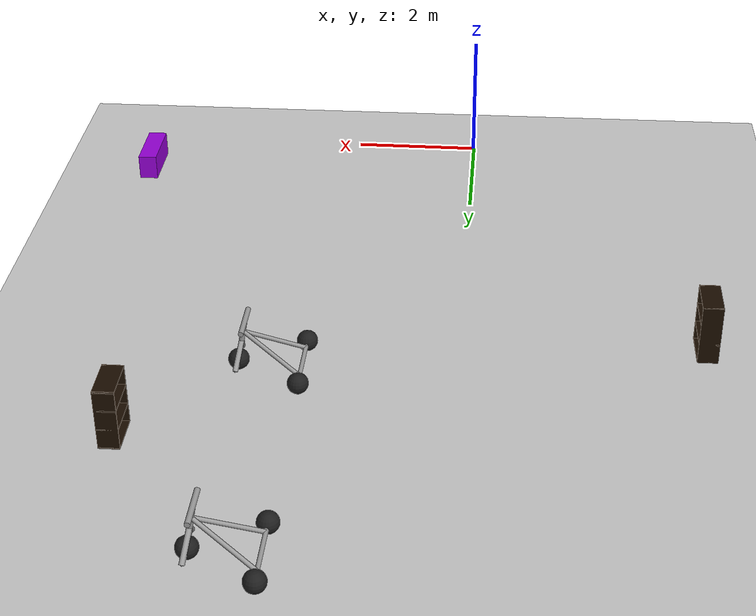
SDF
<sdf version="1.6">
 <world name="default">
  <model name="ground_plane">
   <static>1</static>
   <link name="link">
    <collision name="collision">
     <geometry><plane><normal>0 0 1</normal><size>100 100</size></plane></geometry>
     <surface><friction><ode><mu>100</mu><mu2>50</mu2></ode></friction></surface>
    </collision>
    <visual name="visual">
     <cast_shadows>0</cast_shadows>
     <geometry><plane><normal>0 0 1</normal><size>100 100</size></plane></geometry>
     <material>
      <script><uri>file://media/materials/scripts/gazebo.material</uri><name>Gazebo/Grey</name></script>
     </material>
    </visual>
   </link>
  </model>
  <model name="trisphere_cycle">
   <link name="frame">
    <pose>-0.408559 0 0.385023 0 -0.522021 0</pose>
    <inertial>
     <mass>10</mass>
     <inertia><ixx>0.228</ixx><iyy>0.743521</iyy><izz>0.965521</izz><ixy>0</ixy><ixz>0</ixz><iyz>0</iyz></inertia>
    </inertial>
    <collision name="axle_collision">
     <pose>-0.471335 0 0 1.5708 -0 0</pose>
     <geometry><cylinder><length>1.03923</length><radius>0.03</radius></cylinder></geometry>
    </collision>
    <visual name="axle_visual">
     <pose>-0.471335 0 0 1.5708 -0 0</pose>
     <geometry><cylinder><length>1.03923</length><radius>0.03</radius></cylinder></geometry>
     <material>
      <script><uri>file://media/materials/scripts/gazebo.material</uri><name>Gazebo/Grey</name></script>
     </material>
    </visual>
    <collision name="frame_left_collision">
     <pose>0 0.171552 0 -2.79253 1.57079 3.14159</pose>
     <geometry><cylinder><length>1.00317</length><radius>0.03</radius></cylinder></geometry>
    </collision>
    <visual name="frame_left_visual">
     <pose>0 0.171552 0 -2.79253 1.57079 3.14159</pose>
     <geometry><cylinder><length>1.00317</length><radius>0.03</radius></cylinder></geometry>
     <material>
      <script><uri>file://media/materials/scripts/gazebo.material</uri><name>Gazebo/Grey</name></script>
     </material>
    </visual>
    <collision name="frame_right_collision">
     <pose>0 -0.171552 0 2.79253 1.57079 -3.14159</pose>
     <geometry><cylinder><length>1.00317</length><radius>0.03</radius></cylinder></geometry>
    </collision>
    <visual name="frame_right_visual">
     <pose>0 -0.171552 0 2.79253 1.57079 -3.14159</pose>
     <geometry><cylinder><length>1.00317</length><radius>0.03</radius></cylinder></geometry>
     <material>
      <script><uri>file://media/materials/scripts/gazebo.material</uri><name>Gazebo/Grey</name></script>
     </material>
    </visual>
   </link>
   <link name="fork">
    <pose>0.041441 0 0.385023 0 -0.174533 0</pose>
    <inertial>
     <mass>3</mass>
     <inertia>
      <ixx>0.158203</ixx>
      <iyy>0.0583594</iyy>
      <izz>0.102656</izz>
      <ixy>0</ixy>
      <ixz>0</ixz>
      <iyz>0</iyz>
     </inertia>
    </inertial>
    <collision name="handlebars_collision">
     <pose>0 0 0.397748 1.5708 -0 0</pose>
     <geometry><cylinder><length>0.636396</length><radius>0.0375</radius></cylinder></geometry>
    </collision>
    <visual name="handlebars_visual">
     <pose>0 0 0.397748 1.5708 -0 0</pose>
     <geometry><cylinder><length>0.636396</length><radius>0.0375</radius></cylinder></geometry>
     <material>
      <script><uri>file://media/materials/scripts/gazebo.material</uri><name>Gazebo/Grey</name></script>
     </material>
    </visual>
    <collision name="headtube_collision">
     <pose>0 0 0.238649 0 -0 0</pose>
     <geometry><cylinder><length>0.318198</length><radius>0.0375</radius></cylinder></geometry>
    </collision>
    <visual name="headtube_visual">
     <pose>0 0 0.238649 0 -0 0</pose>
     <geometry><cylinder><length>0.318198</length><radius>0.0375</radius></cylinder></geometry>
     <material>
      <script><uri>file://media/materials/scripts/gazebo.material</uri><name>Gazebo/Grey</name></script>
     </material>
    </visual>
    <collision name="spindle_collision">
     <pose>0 0 -0.238649 1.5708 -0 0</pose>
     <geometry><cylinder><length>0.636396</length><radius>0.015</radius></cylinder></geometry>
    </collision>
    <visual name="spindle_visual">
     <pose>0 0 -0.238649 1.5708 -0 0</pose>
     <geometry><cylinder><length>0.636396</length><radius>0.015</radius></cylinder></geometry>
     <material>
      <script><uri>file://media/materials/scripts/gazebo.material</uri><name>Gazebo/Grey</name></script>
     </material>
    </visual>
    <collision name="fork_left_collision">
     <pose>0 0.159099 -0.07955 0.785398 -0 0</pose>
     <geometry><cylinder><length>0.45</length><radius>0.0375</radius></cylinder></geometry>
    </collision>
    <visual name="fork_left_visual">
     <pose>0 0.159099 -0.07955 0.785398 -0 0</pose>
     <geometry><cylinder><length>0.45</length><radius>0.0375</radius></cylinder></geometry>
     <material>
      <script><uri>file://media/materials/scripts/gazebo.material</uri><name>Gazebo/Grey</name></script>
     </material>
    </visual>
    <collision name="fork_right_collision">
     <pose>0 -0.159099 -0.07955 -0.785398 0 0</pose>
     <geometry><cylinder><length>0.45</length><radius>0.0375</radius></cylinder></geometry>
    </collision>
    <visual name="fork_right_visual">
     <pose>0 -0.159099 -0.07955 -0.785398 0 0</pose>
     <geometry><cylinder><length>0.45</length><radius>0.0375</radius></cylinder></geometry>
     <material>
      <script><uri>file://media/materials/scripts/gazebo.material</uri><name>Gazebo/Grey</name></script>
     </material>
    </visual>
   </link>
   <link name="wheel_front">
    <pose>0.082882 0 0.15 0 -0 0</pose>
    <inertial>
     <mass>0.5</mass>
     <inertia><ixx>0.0045</ixx><iyy>0.0045</iyy><izz>0.0045</izz><ixy>0</ixy><ixz>0</ixz><iyz>0</iyz></inertia>
    </inertial>
    <collision name="collision">
     <geometry><sphere><radius>0.15</radius></sphere></geometry>
     <surface><contact><ode><kp>1e+08</kp><kd>1</kd><min_depth>0.0005</min_depth></ode></contact></surface>
    </collision>
    <visual name="visual">
     <geometry><sphere><radius>0.15</radius></sphere></geometry>
     <material>
      <script><uri>file://media/materials/scripts/gazebo.material</uri><name>Gazebo/Black</name></script>
     </material>
    </visual>
   </link>
   <joint name="wheel_front_steer" type="revolute">
    <parent>frame</parent>
    <child>fork</child>
    <axis>
     <xyz>0 0 1</xyz>
     <limit><lower>-0.959931</lower><upper>0.959931</upper></limit>
     <use_parent_model_frame>0</use_parent_model_frame>
     <dynamics><spring_reference>0</spring_reference><spring_stiffness>0</spring_stiffness></dynamics>
    </axis>
   </joint>
   <joint name="wheel_front_spin" type="revolute">
    <parent>fork</parent>
    <child>wheel_front</child>
    <axis>
     <xyz>0 1 0</xyz>
     <use_parent_model_frame>0</use_parent_model_frame>
     <limit><lower>-1e+16</lower><upper>1e+16</upper></limit>
     <dynamics><spring_reference>0</spring_reference><spring_stiffness>0</spring_stiffness></dynamics>
    </axis>
   </joint>
   <link name="wheel_rear_left">
    <pose>-0.817118 0.519615 0.15 0 -0 0</pose>
    <inertial>
     <mass>0.5</mass>
     <inertia><ixx>0.0045</ixx><iyy>0.0045</iyy><izz>0.0045</izz><ixy>0</ixy><ixz>0</ixz><iyz>0</iyz></inertia>
    </inertial>
    <collision name="collision">
     <geometry><sphere><radius>0.15</radius></sphere></geometry>
     <surface><contact><ode><kp>1e+08</kp><kd>1</kd><min_depth>0.0005</min_depth></ode></contact></surface>
    </collision>
    <visual name="visual">
     <geometry><sphere><radius>0.15</radius></sphere></geometry>
     <material>
      <script><uri>file://media/materials/scripts/gazebo.material</uri><name>Gazebo/Black</name></script>
     </material>
    </visual>
   </link>
   <joint name="wheel_rear_left_spin" type="revolute">
    <parent>frame</parent>
    <child>wheel_rear_left</child>
    <axis>
     <xyz>0 1 0</xyz>
     <use_parent_model_frame>0</use_parent_model_frame>
     <limit><lower>-1e+16</lower><upper>1e+16</upper></limit>
     <dynamics><spring_reference>0</spring_reference><spring_stiffness>0</spring_stiffness></dynamics>
    </axis>
   </joint>
   <link name="wheel_rear_right">
    <pose>-0.817118 -0.519615 0.15 0 -0 0</pose>
    <inertial>
     <mass>0.5</mass>
     <inertia><ixx>0.0045</ixx><iyy>0.0045</iyy><izz>0.0045</izz><ixy>0</ixy><ixz>0</ixz><iyz>0</iyz></inertia>
    </inertial>
    <collision name="collision">
     <geometry><sphere><radius>0.15</radius></sphere></geometry>
     <surface><contact><ode><kp>1e+08</kp><kd>1</kd><min_depth>0.0005</min_depth></ode></contact></surface>
    </collision>
    <visual name="visual">
     <geometry><sphere><radius>0.15</radius></sphere></geometry>
     <material>
      <script><uri>file://media/materials/scripts/gazebo.material</uri><name>Gazebo/Black</name></script>
     </material>
    </visual>
   </link>
   <joint name="wheel_rear_right_spin" type="revolute">
    <parent>frame</parent>
    <child>wheel_rear_right</child>
    <axis>
     <xyz>0 1 0</xyz>
     <use_parent_model_frame>0</use_parent_model_frame>
     <limit><lower>-1e+16</lower><upper>1e+16</upper></limit>
     <dynamics><spring_reference>0</spring_reference><spring_stiffness>0</spring_stiffness></dynamics>
    </axis>
   </joint>
   <pose>3.00851 10.7727 -0.000501 0 1e-06 -0.007453</pose>
  </model>
  <model name="trisphere_cycle_0">
   <link name="frame">
    <pose>-0.408559 0 0.385023 0 -0.522021 0</pose>
    <inertial>
     <mass>10</mass>
     <inertia><ixx>0.228</ixx><iyy>0.743521</iyy><izz>0.965521</izz><ixy>0</ixy><ixz>0</ixz><iyz>0</iyz></inertia>
    </inertial>
    <collision name="axle_collision">
     <pose>-0.471335 0 0 1.5708 -0 0</pose>
     <geometry><cylinder><length>1.03923</length><radius>0.03</radius></cylinder></geometry>
    </collision>
    <visual name="axle_visual">
     <pose>-0.471335 0 0 1.5708 -0 0</pose>
     <geometry><cylinder><length>1.03923</length><radius>0.03</radius></cylinder></geometry>
     <material>
      <script><uri>file://media/materials/scripts/gazebo.material</uri><name>Gazebo/Grey</name></script>
     </material>
    </visual>
    <collision name="frame_left_collision">
     <pose>0 0.171552 0 -2.79253 1.57079 3.14159</pose>
     <geometry><cylinder><length>1.00317</length><radius>0.03</radius></cylinder></geometry>
    </collision>
    <visual name="frame_left_visual">
     <pose>0 0.171552 0 -2.79253 1.57079 3.14159</pose>
     <geometry><cylinder><length>1.00317</length><radius>0.03</radius></cylinder></geometry>
     <material>
      <script><uri>file://media/materials/scripts/gazebo.material</uri><name>Gazebo/Grey</name></script>
     </material>
    </visual>
    <collision name="frame_right_collision">
     <pose>0 -0.171552 0 2.79253 1.57079 -3.14159</pose>
     <geometry><cylinder><length>1.00317</length><radius>0.03</radius></cylinder></geometry>
    </collision>
    <visual name="frame_right_visual">
     <pose>0 -0.171552 0 2.79253 1.57079 -3.14159</pose>
     <geometry><cylinder><length>1.00317</length><radius>0.03</radius></cylinder></geometry>
     <material>
      <script><uri>file://media/materials/scripts/gazebo.material</uri><name>Gazebo/Grey</name></script>
     </material>
    </visual>
   </link>
   <link name="fork">
    <pose>0.041441 0 0.385023 0 -0.174533 0</pose>
    <inertial>
     <mass>3</mass>
     <inertia>
      <ixx>0.158203</ixx>
      <iyy>0.0583594</iyy>
      <izz>0.102656</izz>
      <ixy>0</ixy>
      <ixz>0</ixz>
      <iyz>0</iyz>
     </inertia>
    </inertial>
    <collision name="handlebars_collision">
     <pose>0 0 0.397748 1.5708 -0 0</pose>
     <geometry><cylinder><length>0.636396</length><radius>0.0375</radius></cylinder></geometry>
    </collision>
    <visual name="handlebars_visual">
     <pose>0 0 0.397748 1.5708 -0 0</pose>
     <geometry><cylinder><length>0.636396</length><radius>0.0375</radius></cylinder></geometry>
     <material>
      <script><uri>file://media/materials/scripts/gazebo.material</uri><name>Gazebo/Grey</name></script>
     </material>
    </visual>
    <collision name="headtube_collision">
     <pose>0 0 0.238649 0 -0 0</pose>
     <geometry><cylinder><length>0.318198</length><radius>0.0375</radius></cylinder></geometry>
    </collision>
    <visual name="headtube_visual">
     <pose>0 0 0.238649 0 -0 0</pose>
     <geometry><cylinder><length>0.318198</length><radius>0.0375</radius></cylinder></geometry>
     <material>
      <script><uri>file://media/materials/scripts/gazebo.material</uri><name>Gazebo/Grey</name></script>
     </material>
    </visual>
    <collision name="spindle_collision">
     <pose>0 0 -0.238649 1.5708 -0 0</pose>
     <geometry><cylinder><length>0.636396</length><radius>0.015</radius></cylinder></geometry>
    </collision>
    <visual name="spindle_visual">
     <pose>0 0 -0.238649 1.5708 -0 0</pose>
     <geometry><cylinder><length>0.636396</length><radius>0.015</radius></cylinder></geometry>
     <material>
      <script><uri>file://media/materials/scripts/gazebo.material</uri><name>Gazebo/Grey</name></script>
     </material>
    </visual>
    <collision name="fork_left_collision">
     <pose>0 0.159099 -0.07955 0.785398 -0 0</pose>
     <geometry><cylinder><length>0.45</length><radius>0.0375</radius></cylinder></geometry>
    </collision>
    <visual name="fork_left_visual">
     <pose>0 0.159099 -0.07955 0.785398 -0 0</pose>
     <geometry><cylinder><length>0.45</length><radius>0.0375</radius></cylinder></geometry>
     <material>
      <script><uri>file://media/materials/scripts/gazebo.material</uri><name>Gazebo/Grey</name></script>
     </material>
    </visual>
    <collision name="fork_right_collision">
     <pose>0 -0.159099 -0.07955 -0.785398 0 0</pose>
     <geometry><cylinder><length>0.45</length><radius>0.0375</radius></cylinder></geometry>
    </collision>
    <visual name="fork_right_visual">
     <pose>0 -0.159099 -0.07955 -0.785398 0 0</pose>
     <geometry><cylinder><length>0.45</length><radius>0.0375</radius></cylinder></geometry>
     <material>
      <script><uri>file://media/materials/scripts/gazebo.material</uri><name>Gazebo/Grey</name></script>
     </material>
    </visual>
   </link>
   <link name="wheel_front">
    <pose>0.082882 0 0.15 0 -0 0</pose>
    <inertial>
     <mass>0.5</mass>
     <inertia><ixx>0.0045</ixx><iyy>0.0045</iyy><izz>0.0045</izz><ixy>0</ixy><ixz>0</ixz><iyz>0</iyz></inertia>
    </inertial>
    <collision name="collision">
     <geometry><sphere><radius>0.15</radius></sphere></geometry>
     <surface><contact><ode><kp>1e+08</kp><kd>1</kd><min_depth>0.0005</min_depth></ode></contact></surface>
    </collision>
    <visual name="visual">
     <geometry><sphere><radius>0.15</radius></sphere></geometry>
     <material>
      <script><uri>file://media/materials/scripts/gazebo.material</uri><name>Gazebo/Black</name></script>
     </material>
    </visual>
   </link>
   <joint name="wheel_front_steer" type="revolute">
    <parent>frame</parent>
    <child>fork</child>
    <axis>
     <xyz>0 0 1</xyz>
     <limit><lower>-0.959931</lower><upper>0.959931</upper></limit>
     <use_parent_model_frame>0</use_parent_model_frame>
     <dynamics><spring_reference>0</spring_reference><spring_stiffness>0</spring_stiffness></dynamics>
    </axis>
   </joint>
   <joint name="wheel_front_spin" type="revolute">
    <parent>fork</parent>
    <child>wheel_front</child>
    <axis>
     <xyz>0 1 0</xyz>
     <use_parent_model_frame>0</use_parent_model_frame>
     <limit><lower>-1e+16</lower><upper>1e+16</upper></limit>
     <dynamics><spring_reference>0</spring_reference><spring_stiffness>0</spring_stiffness></dynamics>
    </axis>
   </joint>
   <link name="wheel_rear_left">
    <pose>-0.817118 0.519615 0.15 0 -0 0</pose>
    <inertial>
     <mass>0.5</mass>
     <inertia><ixx>0.0045</ixx><iyy>0.0045</iyy><izz>0.0045</izz><ixy>0</ixy><ixz>0</ixz><iyz>0</iyz></inertia>
    </inertial>
    <collision name="collision">
     <geometry><sphere><radius>0.15</radius></sphere></geometry>
     <surface><contact><ode><kp>1e+08</kp><kd>1</kd><min_depth>0.0005</min_depth></ode></contact></surface>
    </collision>
    <visual name="visual">
     <geometry><sphere><radius>0.15</radius></sphere></geometry>
     <material>
      <script><uri>file://media/materials/scripts/gazebo.material</uri><name>Gazebo/Black</name></script>
     </material>
    </visual>
   </link>
   <joint name="wheel_rear_left_spin" type="revolute">
    <parent>frame</parent>
    <child>wheel_rear_left</child>
    <axis>
     <xyz>0 1 0</xyz>
     <use_parent_model_frame>0</use_parent_model_frame>
     <limit><lower>-1e+16</lower><upper>1e+16</upper></limit>
     <dynamics><spring_reference>0</spring_reference><spring_stiffness>0</spring_stiffness></dynamics>
    </axis>
   </joint>
   <link name="wheel_rear_right">
    <pose>-0.817118 -0.519615 0.15 0 -0 0</pose>
    <inertial>
     <mass>0.5</mass>
     <inertia><ixx>0.0045</ixx><iyy>0.0045</iyy><izz>0.0045</izz><ixy>0</ixy><ixz>0</ixz><iyz>0</iyz></inertia>
    </inertial>
    <collision name="collision">
     <geometry><sphere><radius>0.15</radius></sphere></geometry>
     <surface><contact><ode><kp>1e+08</kp><kd>1</kd><min_depth>0.0005</min_depth></ode></contact></surface>
    </collision>
    <visual name="visual">
     <geometry><sphere><radius>0.15</radius></sphere></geometry>
     <material>
      <script><uri>file://media/materials/scripts/gazebo.material</uri><name>Gazebo/Black</name></script>
     </material>
    </visual>
   </link>
   <joint name="wheel_rear_right_spin" type="revolute">
    <parent>frame</parent>
    <child>wheel_rear_right</child>
    <axis>
     <xyz>0 1 0</xyz>
     <use_parent_model_frame>0</use_parent_model_frame>
     <limit><lower>-1e+16</lower><upper>1e+16</upper></limit>
     <dynamics><spring_reference>0</spring_reference><spring_stiffness>0</spring_stiffness></dynamics>
    </axis>
   </joint>
   <pose>3.00075 6.86317 -0.000501 0 1e-06 -0.007686</pose>
  </model>
  <model name="6_Cube_StorageE_0">
   <link name="Wall_0">
    <pose>0 0 0.01 0 -0 0</pose>
    <inertial>
     <mass>1.6201</mass>
     <inertia><ixx>0.0119</ixx><iyy>0.0631</iyy><izz>0.0513</izz><ixy>0</ixy><ixz>0</ixz><iyz>0</iyz></inertia>
    </inertial>
    <collision name="Wall_0_Collision"><geometry><box><size>0.616 0.296 0.02</size></box></geometry></collision>
    <visual name="Wall_0_Visual">
     <geometry><box><size>0.616 0.296 0.02</size></box></geometry>
     <material>
      <script><uri>file://media/materials/scripts/gazebo.material</uri><name>Gazebo/Grey</name></script>
      <ambient>0.105882 0.0509804 0 1</ambient>
     </material>
    </visual>
   </link>
   <joint name="0_2" type="fixed">
    <pose>-0.308 0 0 0 -0 0</pose>
    <parent>Wall_2</parent>
    <child>Wall_0</child>
    <axis>
     <xyz>1 0 0</xyz>
     <use_parent_model_frame>0</use_parent_model_frame>
     <limit><lower>-1e+16</lower><upper>1e+16</upper></limit>
    </axis>
   </joint>
   <joint name="0_12" type="fixed">
    <parent>Wall_12</parent>
    <child>Wall_0</child>
    <axis>
     <xyz>0 0 1</xyz>
     <use_parent_model_frame>0</use_parent_model_frame>
     <limit><lower>-1e+16</lower><upper>1e+16</upper></limit>
    </axis>
   </joint>
   <joint name="0_4" type="fixed">
    <pose>0.308 0 0 0 -0 0</pose>
    <parent>Wall_4</parent>
    <child>Wall_0</child>
    <axis>
     <xyz>1 0 0</xyz>
     <use_parent_model_frame>0</use_parent_model_frame>
     <limit><lower>-1e+16</lower><upper>1e+16</upper></limit>
    </axis>
   </joint>
   <link name="Wall_10">
    <pose>0 0 0.61 0 -0 0</pose>
    <inertial>
     <mass>1.6201</mass>
     <inertia><ixx>0.0119</ixx><iyy>0.0631</iyy><izz>0.0513</izz><ixy>0</ixy><ixz>0</ixz><iyz>0</iyz></inertia>
    </inertial>
    <collision name="Wall_10_Collision"><geometry><box><size>0.616 0.296 0.02</size></box></geometry></collision>
    <visual name="Wall_10_Visual">
     <geometry><box><size>0.616 0.296 0.02</size></box></geometry>
     <material>
      <script><uri>file://media/materials/scripts/gazebo.material</uri><name>Gazebo/Grey</name></script>
      <ambient>0.105882 0.0509804 0 1</ambient>
     </material>
    </visual>
   </link>
   <joint name="10_2" type="fixed">
    <pose>-0.308 0 0 0 -0 0</pose>
    <parent>Wall_2</parent>
    <child>Wall_10</child>
    <axis>
     <xyz>1 0 0</xyz>
     <use_parent_model_frame>0</use_parent_model_frame>
     <limit><lower>-1e+16</lower><upper>1e+16</upper></limit>
    </axis>
   </joint>
   <joint name="10_12" type="fixed">
    <parent>Wall_12</parent>
    <child>Wall_10</child>
    <axis>
     <xyz>0 0 1</xyz>
     <use_parent_model_frame>0</use_parent_model_frame>
     <limit><lower>-1e+16</lower><upper>1e+16</upper></limit>
    </axis>
   </joint>
   <joint name="10_4" type="fixed">
    <pose>0.308 0 0 0 -0 0</pose>
    <parent>Wall_4</parent>
    <child>Wall_10</child>
    <axis>
     <xyz>1 0 0</xyz>
     <use_parent_model_frame>0</use_parent_model_frame>
     <limit><lower>-1e+16</lower><upper>1e+16</upper></limit>
    </axis>
   </joint>
   <link name="Wall_2">
    <pose>-0.298 0 0.4575 0 -0 0</pose>
    <inertial>
     <mass>2.4065</mass>
     <inertia><ixx>0.0177</ixx><iyy>0.1855</iyy><izz>0.168</izz><ixy>0</ixy><ixz>0</ixz><iyz>0</iyz></inertia>
    </inertial>
    <collision name="Wall_2_Collision"><geometry><box><size>0.02 0.296 0.915</size></box></geometry></collision>
    <visual name="Wall_2_Visual">
     <geometry><box><size>0.02 0.296 0.915</size></box></geometry>
     <material>
      <script><uri>file://media/materials/scripts/gazebo.material</uri><name>Gazebo/Grey</name></script>
      <ambient>0.105882 0.0509804 0 1</ambient>
     </material>
    </visual>
   </link>
   <link name="Wall_4">
    <pose>0.298 0 0.4575 0 -0 0</pose>
    <inertial>
     <mass>2.4065</mass>
     <inertia><ixx>0.0177</ixx><iyy>0.1855</iyy><izz>0.168</izz><ixy>0</ixy><ixz>0</ixz><iyz>0</iyz></inertia>
    </inertial>
    <collision name="Wall_4_Collision"><geometry><box><size>0.02 0.296 0.915</size></box></geometry></collision>
    <visual name="Wall_4_Visual">
     <geometry><box><size>0.02 0.296 0.915</size></box></geometry>
     <material>
      <script><uri>file://media/materials/scripts/gazebo.material</uri><name>Gazebo/Grey</name></script>
      <ambient>0.105882 0.0509804 0 1</ambient>
     </material>
    </visual>
   </link>
   <link name="Wall_6">
    <pose>0 0 0.905 0 -0 0</pose>
    <inertial>
     <mass>1.6201</mass>
     <inertia><ixx>0.0119</ixx><iyy>0.0631</iyy><izz>0.0513</izz><ixy>0</ixy><ixz>0</ixz><iyz>0</iyz></inertia>
    </inertial>
    <collision name="Wall_6_Collision"><geometry><box><size>0.616 0.296 0.02</size></box></geometry></collision>
    <visual name="Wall_6_Visual">
     <geometry><box><size>0.616 0.296 0.02</size></box></geometry>
     <material>
      <script><uri>file://media/materials/scripts/gazebo.material</uri><name>Gazebo/Grey</name></script>
      <ambient>0.105882 0.0509804 0 1</ambient>
     </material>
    </visual>
   </link>
   <joint name="6_2" type="fixed">
    <pose>-0.308 0 0 0 -0 0</pose>
    <parent>Wall_2</parent>
    <child>Wall_6</child>
    <axis>
     <xyz>2 0 0</xyz>
     <use_parent_model_frame>0</use_parent_model_frame>
     <limit><lower>-1e+16</lower><upper>1e+16</upper></limit>
    </axis>
   </joint>
   <joint name="6_12" type="fixed">
    <parent>Wall_12</parent>
    <child>Wall_6</child>
    <axis>
     <xyz>0 0 1</xyz>
     <use_parent_model_frame>0</use_parent_model_frame>
     <limit><lower>-1e+16</lower><upper>1e+16</upper></limit>
    </axis>
   </joint>
   <joint name="6_4" type="fixed">
    <pose>0.308 0 0 0 -0 0</pose>
    <parent>Wall_4</parent>
    <child>Wall_6</child>
    <axis>
     <xyz>1 0 0</xyz>
     <use_parent_model_frame>0</use_parent_model_frame>
     <limit><lower>-1e+16</lower><upper>1e+16</upper></limit>
    </axis>
   </joint>
   <link name="Wall_8">
    <pose>0 0 0.305 0 -0 0</pose>
    <inertial>
     <mass>1.6201</mass>
     <inertia><ixx>0.0119</ixx><iyy>0.0631</iyy><izz>0.0513</izz><ixy>0</ixy><ixz>0</ixz><iyz>0</iyz></inertia>
    </inertial>
    <collision name="Wall_8_Collision"><geometry><box><size>0.616 0.296 0.02</size></box></geometry></collision>
    <visual name="Wall_8_Visual">
     <geometry><box><size>0.616 0.296 0.02</size></box></geometry>
     <material>
      <script><uri>file://media/materials/scripts/gazebo.material</uri><name>Gazebo/Grey</name></script>
      <ambient>0.105882 0.0509804 0 1</ambient>
     </material>
    </visual>
   </link>
   <joint name="8_2" type="fixed">
    <pose>-0.308 0 0 0 -0 0</pose>
    <parent>Wall_2</parent>
    <child>Wall_8</child>
    <axis>
     <xyz>1 0 0</xyz>
     <use_parent_model_frame>0</use_parent_model_frame>
     <limit><lower>-1e+16</lower><upper>1e+16</upper></limit>
    </axis>
   </joint>
   <joint name="8_12" type="fixed">
    <parent>Wall_12</parent>
    <child>Wall_8</child>
    <axis>
     <xyz>0 0 1</xyz>
     <use_parent_model_frame>0</use_parent_model_frame>
     <limit><lower>-1e+16</lower><upper>1e+16</upper></limit>
    </axis>
   </joint>
   <joint name="8_4" type="fixed">
    <pose>0.308 0 0 0 -0 0</pose>
    <parent>Wall_4</parent>
    <child>Wall_8</child>
    <axis>
     <xyz>1 0 0</xyz>
     <use_parent_model_frame>0</use_parent_model_frame>
     <limit><lower>-1e+16</lower><upper>1e+16</upper></limit>
    </axis>
   </joint>
   <static>1</static>
   <pose>-3.5 6 0 0 -0 1.57098</pose>
  </model>
  <model name="6_Cube_StorageE">
   <link name="Wall_0">
    <pose>0 0 0.01 0 -0 0</pose>
    <inertial>
     <mass>1.6201</mass>
     <inertia><ixx>0.0119</ixx><iyy>0.0631</iyy><izz>0.0513</izz><ixy>0</ixy><ixz>0</ixz><iyz>0</iyz></inertia>
    </inertial>
    <collision name="Wall_0_Collision"><geometry><box><size>0.616 0.296 0.02</size></box></geometry></collision>
    <visual name="Wall_0_Visual">
     <geometry><box><size>0.616 0.296 0.02</size></box></geometry>
     <material>
      <script><uri>file://media/materials/scripts/gazebo.material</uri><name>Gazebo/Grey</name></script>
      <ambient>0.105882 0.0509804 0 1</ambient>
     </material>
    </visual>
   </link>
   <joint name="0_2" type="fixed">
    <pose>-0.308 0 0 0 -0 0</pose>
    <parent>Wall_2</parent>
    <child>Wall_0</child>
    <axis>
     <xyz>1 0 0</xyz>
     <use_parent_model_frame>0</use_parent_model_frame>
     <limit><lower>-1e+16</lower><upper>1e+16</upper></limit>
    </axis>
   </joint>
   <joint name="0_12" type="fixed">
    <parent>Wall_12</parent>
    <child>Wall_0</child>
    <axis>
     <xyz>0 0 1</xyz>
     <use_parent_model_frame>0</use_parent_model_frame>
     <limit><lower>-1e+16</lower><upper>1e+16</upper></limit>
    </axis>
   </joint>
   <joint name="0_4" type="fixed">
    <pose>0.308 0 0 0 -0 0</pose>
    <parent>Wall_4</parent>
    <child>Wall_0</child>
    <axis>
     <xyz>1 0 0</xyz>
     <use_parent_model_frame>0</use_parent_model_frame>
     <limit><lower>-1e+16</lower><upper>1e+16</upper></limit>
    </axis>
   </joint>
   <link name="Wall_10">
    <pose>0 0 0.61 0 -0 0</pose>
    <inertial>
     <mass>1.6201</mass>
     <inertia><ixx>0.0119</ixx><iyy>0.0631</iyy><izz>0.0513</izz><ixy>0</ixy><ixz>0</ixz><iyz>0</iyz></inertia>
    </inertial>
    <collision name="Wall_10_Collision"><geometry><box><size>0.616 0.296 0.02</size></box></geometry></collision>
    <visual name="Wall_10_Visual">
     <geometry><box><size>0.616 0.296 0.02</size></box></geometry>
     <material>
      <script><uri>file://media/materials/scripts/gazebo.material</uri><name>Gazebo/Grey</name></script>
      <ambient>0.105882 0.0509804 0 1</ambient>
     </material>
    </visual>
   </link>
   <joint name="10_2" type="fixed">
    <pose>-0.308 0 0 0 -0 0</pose>
    <parent>Wall_2</parent>
    <child>Wall_10</child>
    <axis>
     <xyz>1 0 0</xyz>
     <use_parent_model_frame>0</use_parent_model_frame>
     <limit><lower>-1e+16</lower><upper>1e+16</upper></limit>
    </axis>
   </joint>
   <joint name="10_12" type="fixed">
    <parent>Wall_12</parent>
    <child>Wall_10</child>
    <axis>
     <xyz>0 0 1</xyz>
     <use_parent_model_frame>0</use_parent_model_frame>
     <limit><lower>-1e+16</lower><upper>1e+16</upper></limit>
    </axis>
   </joint>
   <joint name="10_4" type="fixed">
    <pose>0.308 0 0 0 -0 0</pose>
    <parent>Wall_4</parent>
    <child>Wall_10</child>
    <axis>
     <xyz>1 0 0</xyz>
     <use_parent_model_frame>0</use_parent_model_frame>
     <limit><lower>-1e+16</lower><upper>1e+16</upper></limit>
    </axis>
   </joint>
   <link name="Wall_2">
    <pose>-0.298 0 0.4575 0 -0 0</pose>
    <inertial>
     <mass>2.4065</mass>
     <inertia><ixx>0.0177</ixx><iyy>0.1855</iyy><izz>0.168</izz><ixy>0</ixy><ixz>0</ixz><iyz>0</iyz></inertia>
    </inertial>
    <collision name="Wall_2_Collision"><geometry><box><size>0.02 0.296 0.915</size></box></geometry></collision>
    <visual name="Wall_2_Visual">
     <geometry><box><size>0.02 0.296 0.915</size></box></geometry>
     <material>
      <script><uri>file://media/materials/scripts/gazebo.material</uri><name>Gazebo/Grey</name></script>
      <ambient>0.105882 0.0509804 0 1</ambient>
     </material>
    </visual>
   </link>
   <link name="Wall_4">
    <pose>0.298 0 0.4575 0 -0 0</pose>
    <inertial>
     <mass>2.4065</mass>
     <inertia><ixx>0.0177</ixx><iyy>0.1855</iyy><izz>0.168</izz><ixy>0</ixy><ixz>0</ixz><iyz>0</iyz></inertia>
    </inertial>
    <collision name="Wall_4_Collision"><geometry><box><size>0.02 0.296 0.915</size></box></geometry></collision>
    <visual name="Wall_4_Visual">
     <geometry><box><size>0.02 0.296 0.915</size></box></geometry>
     <material>
      <script><uri>file://media/materials/scripts/gazebo.material</uri><name>Gazebo/Grey</name></script>
      <ambient>0.105882 0.0509804 0 1</ambient>
     </material>
    </visual>
   </link>
   <link name="Wall_6">
    <pose>0 0 0.905 0 -0 0</pose>
    <inertial>
     <mass>1.6201</mass>
     <inertia><ixx>0.0119</ixx><iyy>0.0631</iyy><izz>0.0513</izz><ixy>0</ixy><ixz>0</ixz><iyz>0</iyz></inertia>
    </inertial>
    <collision name="Wall_6_Collision"><geometry><box><size>0.616 0.296 0.02</size></box></geometry></collision>
    <visual name="Wall_6_Visual">
     <geometry><box><size>0.616 0.296 0.02</size></box></geometry>
     <material>
      <script><uri>file://media/materials/scripts/gazebo.material</uri><name>Gazebo/Grey</name></script>
      <ambient>0.105882 0.0509804 0 1</ambient>
     </material>
    </visual>
   </link>
   <joint name="6_2" type="fixed">
    <pose>-0.308 0 0 0 -0 0</pose>
    <parent>Wall_2</parent>
    <child>Wall_6</child>
    <axis>
     <xyz>2 0 0</xyz>
     <use_parent_model_frame>0</use_parent_model_frame>
     <limit><lower>-1e+16</lower><upper>1e+16</upper></limit>
    </axis>
   </joint>
   <joint name="6_12" type="fixed">
    <parent>Wall_12</parent>
    <child>Wall_6</child>
    <axis>
     <xyz>0 0 1</xyz>
     <use_parent_model_frame>0</use_parent_model_frame>
     <limit><lower>-1e+16</lower><upper>1e+16</upper></limit>
    </axis>
   </joint>
   <joint name="6_4" type="fixed">
    <pose>0.308 0 0 0 -0 0</pose>
    <parent>Wall_4</parent>
    <child>Wall_6</child>
    <axis>
     <xyz>1 0 0</xyz>
     <use_parent_model_frame>0</use_parent_model_frame>
     <limit><lower>-1e+16</lower><upper>1e+16</upper></limit>
    </axis>
   </joint>
   <link name="Wall_8">
    <pose>0 0 0.305 0 -0 0</pose>
    <inertial>
     <mass>1.6201</mass>
     <inertia><ixx>0.0119</ixx><iyy>0.0631</iyy><izz>0.0513</izz><ixy>0</ixy><ixz>0</ixz><iyz>0</iyz></inertia>
    </inertial>
    <collision name="Wall_8_Collision"><geometry><box><size>0.616 0.296 0.02</size></box></geometry></collision>
    <visual name="Wall_8_Visual">
     <geometry><box><size>0.616 0.296 0.02</size></box></geometry>
     <material>
      <script><uri>file://media/materials/scripts/gazebo.material</uri><name>Gazebo/Grey</name></script>
      <ambient>0.105882 0.0509804 0 1</ambient>
     </material>
    </visual>
   </link>
   <joint name="8_2" type="fixed">
    <pose>-0.308 0 0 0 -0 0</pose>
    <parent>Wall_2</parent>
    <child>Wall_8</child>
    <axis>
     <xyz>1 0 0</xyz>
     <use_parent_model_frame>0</use_parent_model_frame>
     <limit><lower>-1e+16</lower><upper>1e+16</upper></limit>
    </axis>
   </joint>
   <joint name="8_12" type="fixed">
    <parent>Wall_12</parent>
    <child>Wall_8</child>
    <axis>
     <xyz>0 0 1</xyz>
     <use_parent_model_frame>0</use_parent_model_frame>
     <limit><lower>-1e+16</lower><upper>1e+16</upper></limit>
    </axis>
   </joint>
   <joint name="8_4" type="fixed">
    <pose>0.308 0 0 0 -0 0</pose>
    <parent>Wall_4</parent>
    <child>Wall_8</child>
    <axis>
     <xyz>1 0 0</xyz>
     <use_parent_model_frame>0</use_parent_model_frame>
     <limit><lower>-1e+16</lower><upper>1e+16</upper></limit>
    </axis>
   </joint>
   <static>1</static>
   <pose>4.5 8.5 0 0 -0 1.57098</pose>
  </model>
  <model name="Box_36x15W">
   <link name="Wall">
    <pose>0 0 0.1985 0 -0 0</pose>
    <inertial>
     <mass>5</mass>
     <inertia><ixx>0.1022</ixx><iyy>0.4107</iyy><izz>0.3815</izz><ixy>0</ixy><ixz>0</ixz><iyz>0</iyz></inertia>
    </inertial>
    <collision name="Wall_Collision"><geometry><box><size>0.91 0.296 0.397</size></box></geometry></collision>
    <visual name="Wall_Visual">
     <geometry><box><size>0.91 0.296 0.397</size></box></geometry>
     <material>
      <script><uri>file://media/materials/scripts/gazebo.material</uri><name>Gazebo/Grey</name></script>
      <ambient>0.6 0 0.855 1</ambient>
     </material>
    </visual>
   </link>
   <static>1</static>
   <pose>5.5 1 0 0 0 -1.57098</pose>
  </model>
 </world>
</sdf>
